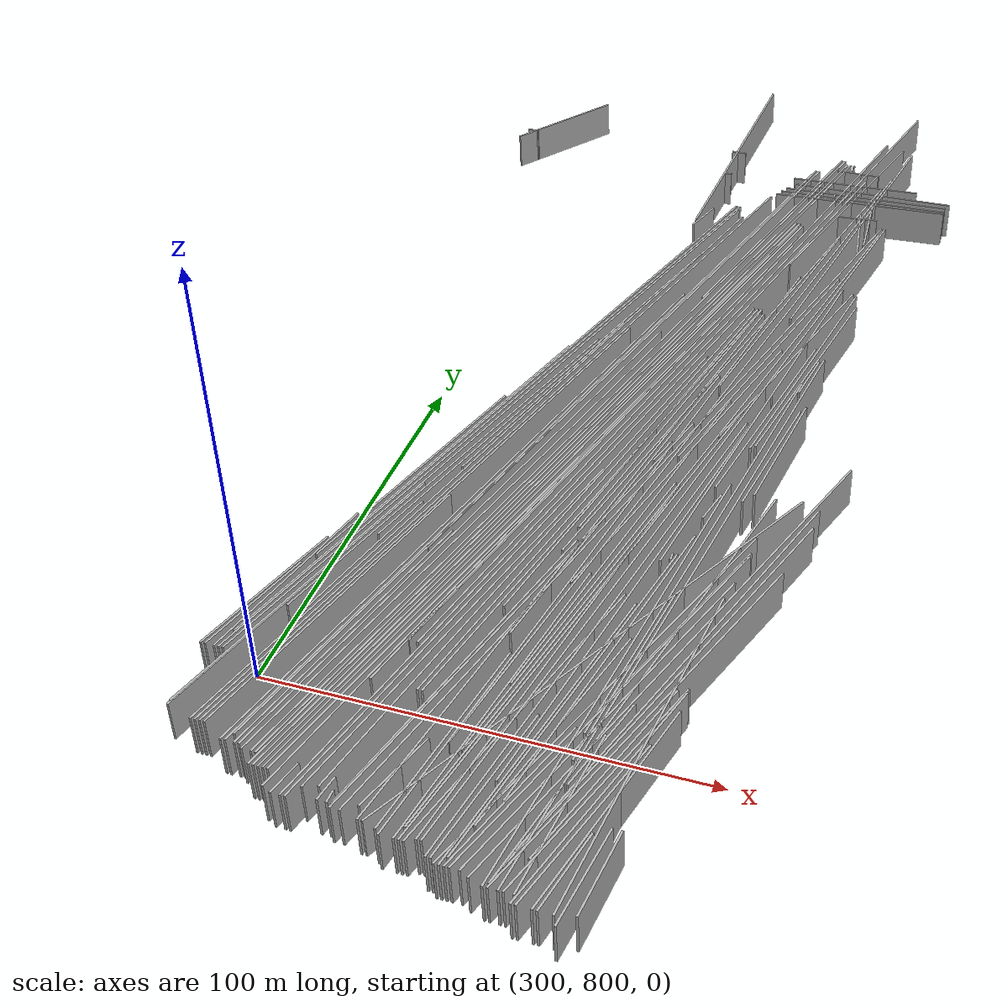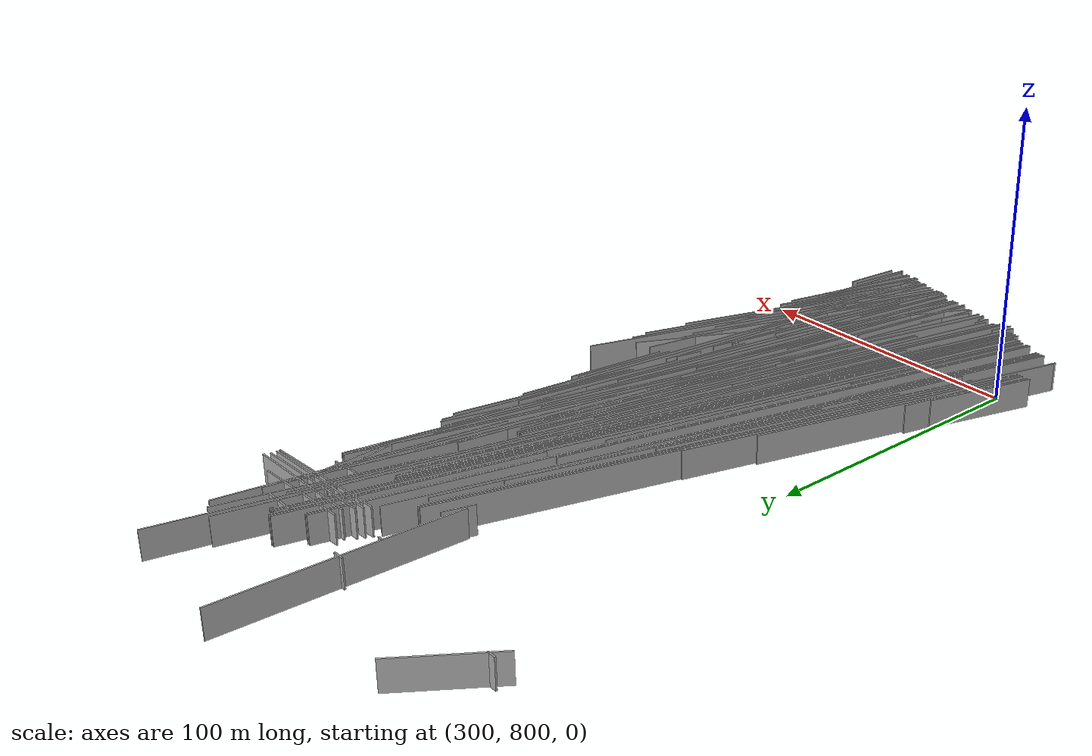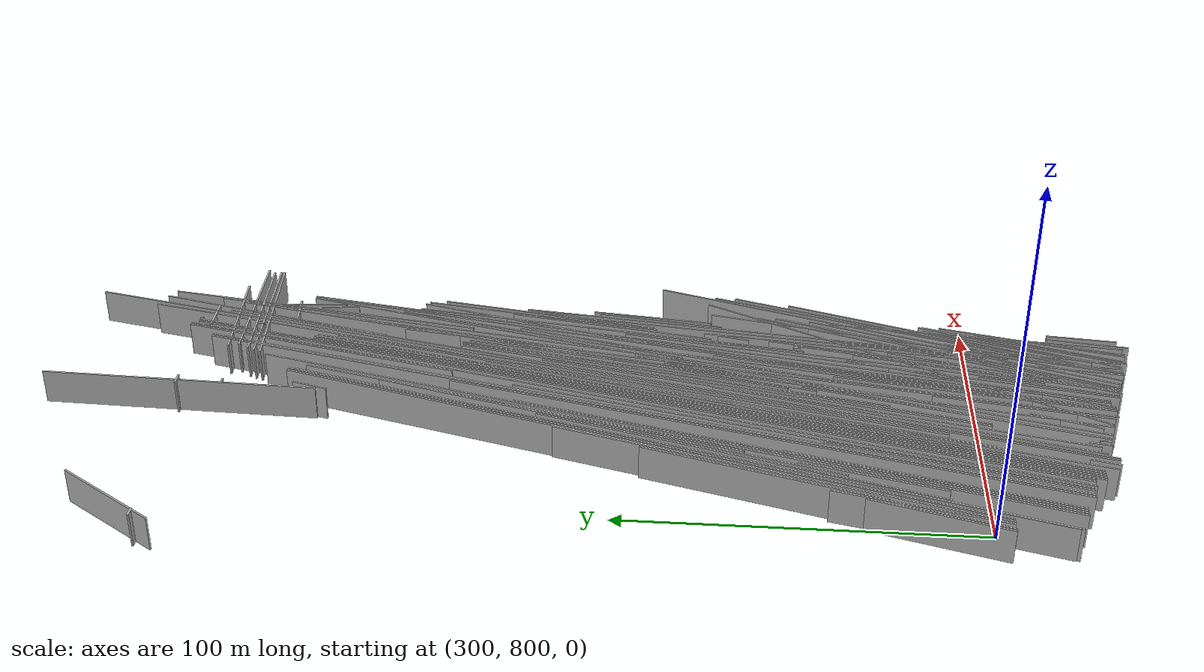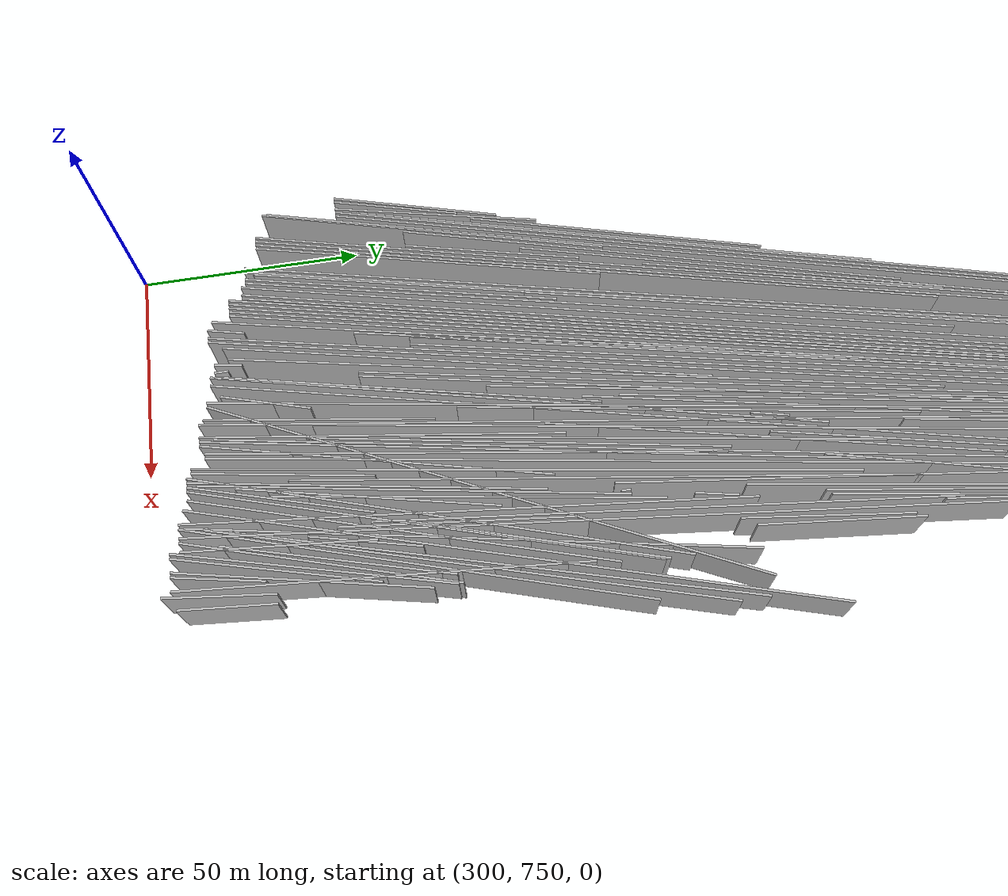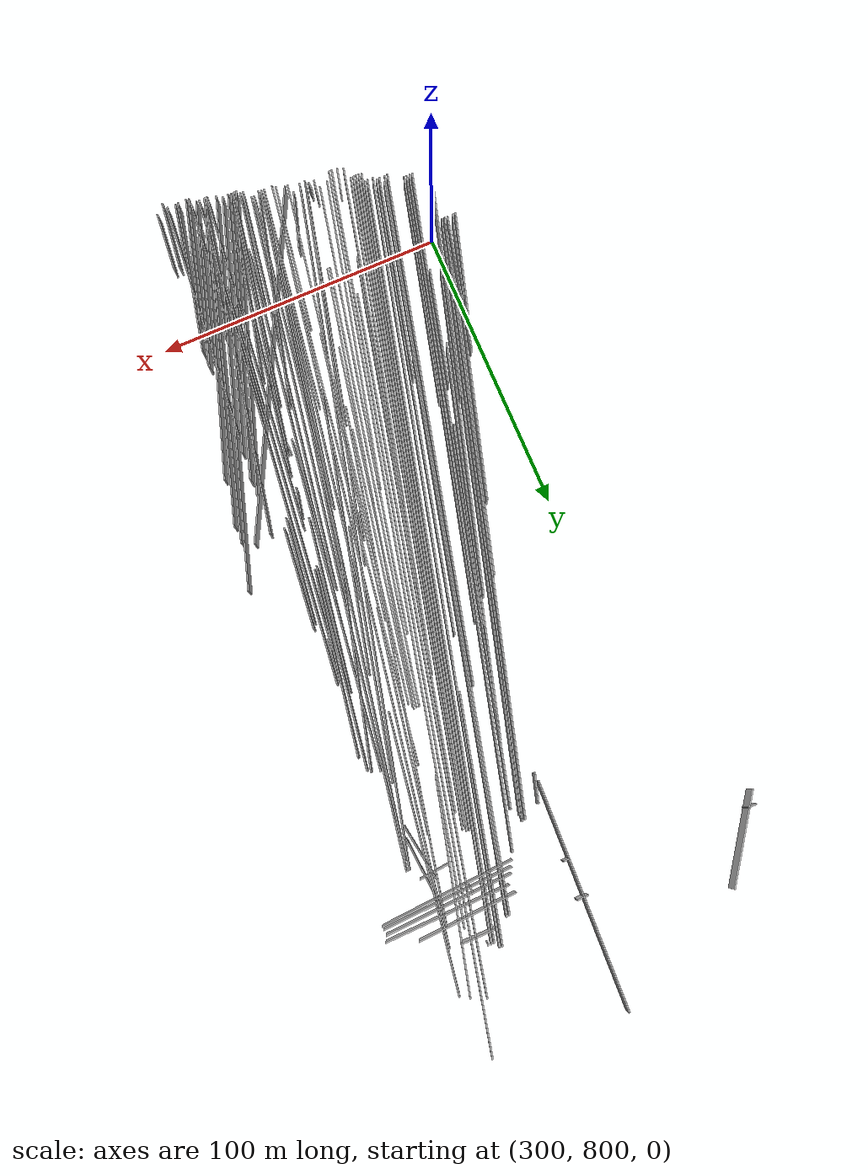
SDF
<sdf version="1.6">
 <model name="Worldsegments">
  <static>1</static>
  <link name="Wall_6">
   <pose>337.5 898.0 5.0 0 0 1.3277315</pose>
   <collision name="Wall_6_Collision"><geometry><box><size>253.4502 0.5 10.0</size></box></geometry></collision>
   <visual name="Wall_6_Visual"><geometry><box><size>253.4502 0.5 10.0</size></box></geometry></visual>
  </link>
  <link name="Wall_13">
   <pose>345.5 900.5 5.0 0 0 1.3267479</pose>
   <collision name="Wall_13_Collision">
    <geometry><box><size>260.72592 0.5 10.0</size></box></geometry>
   </collision>
   <visual name="Wall_13_Visual"><geometry><box><size>260.72592 0.5 10.0</size></box></geometry></visual>
  </link>
  <link name="Wall_14">
   <pose>357.0 913.0 5.0 0 0 1.3435007</pose>
   <collision name="Wall_14_Collision"><geometry><box><size>301.7615 0.5 10.0</size></box></geometry></collision>
   <visual name="Wall_14_Visual"><geometry><box><size>301.7615 0.5 10.0</size></box></geometry></visual>
  </link>
  <link name="Wall_17">
   <pose>382.5 805.0 5.0 0 0 1.2522407</pose>
   <collision name="Wall_17_Collision"><geometry><box><size>98.9798 0.5 10.0</size></box></geometry></collision>
   <visual name="Wall_17_Visual"><geometry><box><size>98.9798 0.5 10.0</size></box></geometry></visual>
  </link>
  <link name="Wall_20">
   <pose>342.5 881.0 5.0 0 0 1.3258177</pose>
   <collision name="Wall_20_Collision">
    <geometry><box><size>226.77081 0.5 10.0</size></box></geometry>
   </collision>
   <visual name="Wall_20_Visual"><geometry><box><size>226.77081 0.5 10.0</size></box></geometry></visual>
  </link>
  <link name="Wall_21">
   <pose>353.0 801.5 5.0 0 0 1.4161958</pose>
   <collision name="Wall_21_Collision"><geometry><box><size>77.92946 0.5 10.0</size></box></geometry></collision>
   <visual name="Wall_21_Visual"><geometry><box><size>77.92946 0.5 10.0</size></box></geometry></visual>
  </link>
  <link name="Wall_22">
   <pose>370.5 846.5 5.0 0 0 1.4118433</pose>
   <collision name="Wall_22_Collision">
    <geometry><box><size>132.67253 0.5 10.0</size></box></geometry>
   </collision>
   <visual name="Wall_22_Visual"><geometry><box><size>132.67253 0.5 10.0</size></box></geometry></visual>
  </link>
  <link name="Wall_23">
   <pose>373.0 817.5 5.0 0 0 1.4536875</pose>
   <collision name="Wall_23_Collision"><geometry><box><size>119.8207 0.5 10.0</size></box></geometry></collision>
   <visual name="Wall_23_Visual"><geometry><box><size>119.8207 0.5 10.0</size></box></geometry></visual>
  </link>
  <link name="Wall_25">
   <pose>372.5 879.5 5.0 0 0 1.3951365</pose>
   <collision name="Wall_25_Collision">
    <geometry><box><size>234.61032 0.5 10.0</size></box></geometry>
   </collision>
   <visual name="Wall_25_Visual"><geometry><box><size>234.61032 0.5 10.0</size></box></geometry></visual>
  </link>
  <link name="Wall_26">
   <pose>338.5 821.5 5.0 0 0 1.3370532</pose>
   <collision name="Wall_26_Collision">
    <geometry><box><size>107.935165 0.5 10.0</size></box></geometry>
   </collision>
   <visual name="Wall_26_Visual"><geometry><box><size>107.935165 0.5 10.0</size></box></geometry></visual>
  </link>
  <link name="Wall_27">
   <pose>363.5 880.5 5.0 0 0 1.3268454</pose>
   <collision name="Wall_27_Collision">
    <geometry><box><size>235.98729 0.5 10.0</size></box></geometry>
   </collision>
   <visual name="Wall_27_Visual"><geometry><box><size>235.98729 0.5 10.0</size></box></geometry></visual>
  </link>
  <link name="Wall_29">
   <pose>344.5 900.5 5.0 0 0 1.3267479</pose>
   <collision name="Wall_29_Collision">
    <geometry><box><size>260.72592 0.5 10.0</size></box></geometry>
   </collision>
   <visual name="Wall_29_Visual"><geometry><box><size>260.72592 0.5 10.0</size></box></geometry></visual>
  </link>
  <link name="Wall_30">
   <pose>329.0 890.5 5.0 0 0 1.3101939</pose>
   <collision name="Wall_30_Collision">
    <geometry><box><size>232.86263 0.5 10.0</size></box></geometry>
   </collision>
   <visual name="Wall_30_Visual"><geometry><box><size>232.86263 0.5 10.0</size></box></geometry></visual>
  </link>
  <link name="Wall_32">
   <pose>382.0 904.5 5.0 0 0 1.4029005</pose>
   <collision name="Wall_32_Collision">
    <geometry><box><size>59.841457 0.5 10.0</size></box></geometry>
   </collision>
   <visual name="Wall_32_Visual"><geometry><box><size>59.841457 0.5 10.0</size></box></geometry></visual>
  </link>
  <link name="Wall_33">
   <pose>346.0 929.0 5.0 0 0 1.3258177</pose>
   <collision name="Wall_33_Collision">
    <geometry><box><size>189.66286 0.5 10.0</size></box></geometry>
   </collision>
   <visual name="Wall_33_Visual"><geometry><box><size>189.66286 0.5 10.0</size></box></geometry></visual>
  </link>
  <link name="Wall_34">
   <pose>364.0 988.5 5.0 0 0 1.3287246</pose>
   <collision name="Wall_34_Collision"><geometry><box><size>83.43261 0.5 10.0</size></box></geometry></collision>
   <visual name="Wall_34_Visual"><geometry><box><size>83.43261 0.5 10.0</size></box></geometry></visual>
  </link>
  <link name="Wall_38">
   <pose>322.5 896.0 5.0 0 0 1.2904967</pose>
   <collision name="Wall_38_Collision">
    <geometry><box><size>206.04126 0.5 10.0</size></box></geometry>
   </collision>
   <visual name="Wall_38_Visual"><geometry><box><size>206.04126 0.5 10.0</size></box></geometry></visual>
  </link>
  <link name="Wall_40">
   <pose>369.5 930.5 5.0 0 0 1.357707</pose>
   <collision name="Wall_40_Collision">
    <geometry><box><size>174.95714 0.5 10.0</size></box></geometry>
   </collision>
   <visual name="Wall_40_Visual"><geometry><box><size>174.95714 0.5 10.0</size></box></geometry></visual>
  </link>
  <link name="Wall_42">
   <pose>387.5 923.5 5.0 0 0 1.3979357</pose>
   <collision name="Wall_42_Collision">
    <geometry><box><size>63.953106 0.5 10.0</size></box></geometry>
   </collision>
   <visual name="Wall_42_Visual"><geometry><box><size>63.953106 0.5 10.0</size></box></geometry></visual>
  </link>
  <link name="Wall_43">
   <pose>388.0 892.5 5.0 0 0 1.4570043</pose>
   <collision name="Wall_43_Collision"><geometry><box><size>35.22783 0.5 10.0</size></box></geometry></collision>
   <visual name="Wall_43_Visual"><geometry><box><size>35.22783 0.5 10.0</size></box></geometry></visual>
  </link>
  <link name="Wall_45">
   <pose>339.0 855.0 5.0 0 0 1.3258177</pose>
   <collision name="Wall_45_Collision">
    <geometry><box><size>173.17044 0.5 10.0</size></box></geometry>
   </collision>
   <visual name="Wall_45_Visual"><geometry><box><size>173.17044 0.5 10.0</size></box></geometry></visual>
  </link>
  <link name="Wall_47">
   <pose>330.5 770.0 5.0 0 0 1.4056476</pose>
   <collision name="Wall_47_Collision">
    <geometry><box><size>6.0827627 0.5 10.0</size></box></geometry>
   </collision>
   <visual name="Wall_47_Visual"><geometry><box><size>6.0827627 0.5 10.0</size></box></geometry></visual>
  </link>
  <link name="Wall_49">
   <pose>343.0 901.5 5.0 0 0 1.3248951</pose>
   <collision name="Wall_49_Collision">
    <geometry><box><size>262.90872 0.5 10.0</size></box></geometry>
   </collision>
   <visual name="Wall_49_Visual"><geometry><box><size>262.90872 0.5 10.0</size></box></geometry></visual>
  </link>
  <link name="Wall_51">
   <pose>353.5 892.5 5.0 0 0 1.3416893</pose>
   <collision name="Wall_51_Collision">
    <geometry><box><size>259.78836 0.5 10.0</size></box></geometry>
   </collision>
   <visual name="Wall_51_Visual"><geometry><box><size>259.78836 0.5 10.0</size></box></geometry></visual>
  </link>
  <link name="Wall_58">
   <pose>343.0 880.0 5.0 0 0 1.3279775</pose>
   <collision name="Wall_58_Collision">
    <geometry><box><size>224.58852 0.5 10.0</size></box></geometry>
   </collision>
   <visual name="Wall_58_Visual"><geometry><box><size>224.58852 0.5 10.0</size></box></geometry></visual>
  </link>
  <link name="Wall_59">
   <pose>386.5 890.0 5.0 0 0 1.4327903</pose>
   <collision name="Wall_59_Collision">
    <geometry><box><size>36.345562 0.5 10.0</size></box></geometry>
   </collision>
   <visual name="Wall_59_Visual"><geometry><box><size>36.345562 0.5 10.0</size></box></geometry></visual>
  </link>
  <link name="Wall_61">
   <pose>322.0 887.0 5.0 0 0 1.2949904</pose>
   <collision name="Wall_61_Collision">
    <geometry><box><size>220.32703 0.5 10.0</size></box></geometry>
   </collision>
   <visual name="Wall_61_Visual"><geometry><box><size>220.32703 0.5 10.0</size></box></geometry></visual>
  </link>
  <link name="Wall_66">
   <pose>327.5 861.5 5.0 0 0 1.3271782</pose>
   <collision name="Wall_66_Collision">
    <geometry><box><size>178.26385 0.5 10.0</size></box></geometry>
   </collision>
   <visual name="Wall_66_Visual"><geometry><box><size>178.26385 0.5 10.0</size></box></geometry></visual>
  </link>
  <link name="Wall_67">
   <pose>384.0 798.5 5.0 0 0 1.476955</pose>
   <collision name="Wall_67_Collision"><geometry><box><size>85.37564 0.5 10.0</size></box></geometry></collision>
   <visual name="Wall_67_Visual"><geometry><box><size>85.37564 0.5 10.0</size></box></geometry></visual>
  </link>
  <link name="Wall_70">
   <pose>357.0 886.0 5.0 0 0 1.3765553</pose>
   <collision name="Wall_70_Collision">
    <geometry><box><size>124.33825 0.5 10.0</size></box></geometry>
   </collision>
   <visual name="Wall_70_Visual"><geometry><box><size>124.33825 0.5 10.0</size></box></geometry></visual>
  </link>
  <link name="Wall_76">
   <pose>379.0 817.0 5.0 0 0 1.3667784</pose>
   <collision name="Wall_76_Collision">
    <geometry><box><size>118.45674 0.5 10.0</size></box></geometry>
   </collision>
   <visual name="Wall_76_Visual"><geometry><box><size>118.45674 0.5 10.0</size></box></geometry></visual>
  </link>
  <link name="Wall_80">
   <pose>385.5 991.5 5.0 0 0 1.4108832</pose>
   <collision name="Wall_80_Collision"><geometry><box><size>94.20191 0.5 10.0</size></box></geometry></collision>
   <visual name="Wall_80_Visual"><geometry><box><size>94.20191 0.5 10.0</size></box></geometry></visual>
  </link>
  <link name="Wall_81">
   <pose>352.5 872.5 5.0 0 0 1.365669</pose>
   <collision name="Wall_81_Collision">
    <geometry><box><size>152.19067 0.5 10.0</size></box></geometry>
   </collision>
   <visual name="Wall_81_Visual"><geometry><box><size>152.19067 0.5 10.0</size></box></geometry></visual>
  </link>
  <link name="Wall_88">
   <pose>370.0 817.5 5.0 0 0 1.3996477</pose>
   <collision name="Wall_88_Collision"><geometry><box><size>82.20097 0.5 10.0</size></box></geometry></collision>
   <visual name="Wall_88_Visual"><geometry><box><size>82.20097 0.5 10.0</size></box></geometry></visual>
  </link>
  <link name="Wall_90">
   <pose>369.0 905.0 5.0 0 0 1.3946742</pose>
   <collision name="Wall_90_Collision">
    <geometry><box><size>239.70816 0.5 10.0</size></box></geometry>
   </collision>
   <visual name="Wall_90_Visual"><geometry><box><size>239.70816 0.5 10.0</size></box></geometry></visual>
  </link>
  <link name="Wall_91">
   <pose>298.5 820.0 5.0 0 0 1.3360738</pose>
   <collision name="Wall_91_Collision">
    <geometry><box><size>47.296936 0.5 10.0</size></box></geometry>
   </collision>
   <visual name="Wall_91_Visual"><geometry><box><size>47.296936 0.5 10.0</size></box></geometry></visual>
  </link>
  <link name="Wall_94">
   <pose>380.0 784.5 5.0 0 0 1.297137</pose>
   <collision name="Wall_94_Collision"><geometry><box><size>59.20304 0.5 10.0</size></box></geometry></collision>
   <visual name="Wall_94_Visual"><geometry><box><size>59.20304 0.5 10.0</size></box></geometry></visual>
  </link>
  <link name="Wall_95">
   <pose>350.5 897.0 5.0 0 0 1.3393854</pose>
   <collision name="Wall_95_Collision">
    <geometry><box><size>178.76521 0.5 10.0</size></box></geometry>
   </collision>
   <visual name="Wall_95_Visual"><geometry><box><size>178.76521 0.5 10.0</size></box></geometry></visual>
  </link>
  <link name="Wall_103">
   <pose>364.0 797.0 5.0 0 0 1.3838171</pose>
   <collision name="Wall_103_Collision">
    <geometry><box><size>75.31268 0.5 10.0</size></box></geometry>
   </collision>
   <visual name="Wall_103_Visual"><geometry><box><size>75.31268 0.5 10.0</size></box></geometry></visual>
  </link>
  <link name="Wall_114">
   <pose>320.0 853.5 5.0 0 0 1.3118434</pose>
   <collision name="Wall_114_Collision">
    <geometry><box><size>156.20819 0.5 10.0</size></box></geometry>
   </collision>
   <visual name="Wall_114_Visual"><geometry><box><size>156.20819 0.5 10.0</size></box></geometry></visual>
  </link>
  <link name="Wall_116">
   <pose>380.0 1023.0 5.0 0 0 0.0</pose>
   <collision name="Wall_116_Collision"><geometry><box><size>12.0 0.5 10.0</size></box></geometry></collision>
   <visual name="Wall_116_Visual"><geometry><box><size>12.0 0.5 10.0</size></box></geometry></visual>
  </link>
  <link name="Wall_117">
   <pose>384.5 815.5 5.0 0 0 1.2662854</pose>
   <collision name="Wall_117_Collision">
    <geometry><box><size>110.06362 0.5 10.0</size></box></geometry>
   </collision>
   <visual name="Wall_117_Visual"><geometry><box><size>110.06362 0.5 10.0</size></box></geometry></visual>
  </link>
  <link name="Wall_120">
   <pose>318.0 867.0 5.0 0 0 1.2877005</pose>
   <collision name="Wall_120_Collision">
    <geometry><box><size>114.56003 0.5 10.0</size></box></geometry>
   </collision>
   <visual name="Wall_120_Visual"><geometry><box><size>114.56003 0.5 10.0</size></box></geometry></visual>
  </link>
  <link name="Wall_126">
   <pose>370.0 879.0 5.0 0 0 1.3785114</pose>
   <collision name="Wall_126_Collision">
    <geometry><box><size>230.24335 0.5 10.0</size></box></geometry>
   </collision>
   <visual name="Wall_126_Visual"><geometry><box><size>230.24335 0.5 10.0</size></box></geometry></visual>
  </link>
  <link name="Wall_128">
   <pose>366.5 806.5 5.0 0 0 1.3820585</pose>
   <collision name="Wall_128_Collision">
    <geometry><box><size>90.60905 0.5 10.0</size></box></geometry>
   </collision>
   <visual name="Wall_128_Visual"><geometry><box><size>90.60905 0.5 10.0</size></box></geometry></visual>
  </link>
  <link name="Wall_129">
   <pose>344.0 1025.0 5.0 0 0 0.0</pose>
   <collision name="Wall_129_Collision"><geometry><box><size>4.0 0.5 10.0</size></box></geometry></collision>
   <visual name="Wall_129_Visual"><geometry><box><size>4.0 0.5 10.0</size></box></geometry></visual>
  </link>
  <link name="Wall_130">
   <pose>326.0 884.0 5.0 0 0 1.3125441</pose>
   <collision name="Wall_130_Collision">
    <geometry><box><size>219.27151 0.5 10.0</size></box></geometry>
   </collision>
   <visual name="Wall_130_Visual"><geometry><box><size>219.27151 0.5 10.0</size></box></geometry></visual>
  </link>
  <link name="Wall_131">
   <pose>341.5 881.0 5.0 0 0 1.3258177</pose>
   <collision name="Wall_131_Collision">
    <geometry><box><size>226.77081 0.5 10.0</size></box></geometry>
   </collision>
   <visual name="Wall_131_Visual"><geometry><box><size>226.77081 0.5 10.0</size></box></geometry></visual>
  </link>
  <link name="Wall_145">
   <pose>375.0 803.0 5.0 0 0 1.2560387</pose>
   <collision name="Wall_145_Collision">
    <geometry><box><size>90.44335 0.5 10.0</size></box></geometry>
   </collision>
   <visual name="Wall_145_Visual"><geometry><box><size>90.44335 0.5 10.0</size></box></geometry></visual>
  </link>
  <link name="Wall_148">
   <pose>329.0 852.5 5.0 0 0 1.3303769</pose>
   <collision name="Wall_148_Collision">
    <geometry><box><size>159.5901 0.5 10.0</size></box></geometry>
   </collision>
   <visual name="Wall_148_Visual"><geometry><box><size>159.5901 0.5 10.0</size></box></geometry></visual>
  </link>
  <link name="Wall_149">
   <pose>311.0 831.5 5.0 0 0 1.3197936</pose>
   <collision name="Wall_149_Collision">
    <geometry><box><size>40.261642 0.5 10.0</size></box></geometry>
   </collision>
   <visual name="Wall_149_Visual"><geometry><box><size>40.261642 0.5 10.0</size></box></geometry></visual>
  </link>
  <link name="Wall_151">
   <pose>384.0 824.5 5.0 0 0 1.2605395</pose>
   <collision name="Wall_151_Collision">
    <geometry><box><size>137.56816 0.5 10.0</size></box></geometry>
   </collision>
   <visual name="Wall_151_Visual"><geometry><box><size>137.56816 0.5 10.0</size></box></geometry></visual>
  </link>
  <link name="Wall_161">
   <pose>349.5 831.0 5.0 0 0 1.322201</pose>
   <collision name="Wall_161_Collision">
    <geometry><box><size>134.12308 0.5 10.0</size></box></geometry>
   </collision>
   <visual name="Wall_161_Visual"><geometry><box><size>134.12308 0.5 10.0</size></box></geometry></visual>
  </link>
  <link name="Wall_167">
   <pose>366.0 830.5 5.0 0 0 1.3998202</pose>
   <collision name="Wall_167_Collision">
    <geometry><box><size>141.05673 0.5 10.0</size></box></geometry>
   </collision>
   <visual name="Wall_167_Visual"><geometry><box><size>141.05673 0.5 10.0</size></box></geometry></visual>
  </link>
  <link name="Wall_169">
   <pose>322.0 770.0 5.0 0 0 1.3258177</pose>
   <collision name="Wall_169_Collision">
    <geometry><box><size>8.246211 0.5 10.0</size></box></geometry>
   </collision>
   <visual name="Wall_169_Visual"><geometry><box><size>8.246211 0.5 10.0</size></box></geometry></visual>
  </link>
  <link name="Wall_171">
   <pose>374.5 807.5 5.0 0 0 1.2553748</pose>
   <collision name="Wall_171_Collision">
    <geometry><box><size>99.92998 0.5 10.0</size></box></geometry>
   </collision>
   <visual name="Wall_171_Visual"><geometry><box><size>99.92998 0.5 10.0</size></box></geometry></visual>
  </link>
  <link name="Wall_177">
   <pose>386.0 1012.5 5.0 0 0 0.02272336</pose>
   <collision name="Wall_177_Collision">
    <geometry><box><size>44.011364 0.5 10.0</size></box></geometry>
   </collision>
   <visual name="Wall_177_Visual"><geometry><box><size>44.011364 0.5 10.0</size></box></geometry></visual>
  </link>
  <link name="Wall_188">
   <pose>323.5 896.0 5.0 0 0 1.2904967</pose>
   <collision name="Wall_188_Collision">
    <geometry><box><size>206.04126 0.5 10.0</size></box></geometry>
   </collision>
   <visual name="Wall_188_Visual"><geometry><box><size>206.04126 0.5 10.0</size></box></geometry></visual>
  </link>
  <link name="Wall_190">
   <pose>375.0 949.5 5.0 0 0 1.3862535</pose>
   <collision name="Wall_190_Collision">
    <geometry><box><size>76.29548 0.5 10.0</size></box></geometry>
   </collision>
   <visual name="Wall_190_Visual"><geometry><box><size>76.29548 0.5 10.0</size></box></geometry></visual>
  </link>
  <link name="Wall_191">
   <pose>375.0 814.5 5.0 0 0 1.4489539</pose>
   <collision name="Wall_191_Collision">
    <geometry><box><size>49.365982 0.5 10.0</size></box></geometry>
   </collision>
   <visual name="Wall_191_Visual"><geometry><box><size>49.365982 0.5 10.0</size></box></geometry></visual>
  </link>
  <link name="Wall_198">
   <pose>358.5 926.0 5.0 0 0 1.3462023</pose>
   <collision name="Wall_198_Collision">
    <geometry><box><size>237.97688 0.5 10.0</size></box></geometry>
   </collision>
   <visual name="Wall_198_Visual"><geometry><box><size>237.97688 0.5 10.0</size></box></geometry></visual>
  </link>
  <link name="Wall_204">
   <pose>295.5 815.5 5.0 0 0 1.2818209</pose>
   <collision name="Wall_204_Collision">
    <geometry><box><size>38.600517 0.5 10.0</size></box></geometry>
   </collision>
   <visual name="Wall_204_Visual"><geometry><box><size>38.600517 0.5 10.0</size></box></geometry></visual>
  </link>
  <link name="Wall_211">
   <pose>374.0 778.0 5.0 0 0 1.4711276</pose>
   <collision name="Wall_211_Collision"><geometry><box><size>40.1995 0.5 10.0</size></box></geometry></collision>
   <visual name="Wall_211_Visual"><geometry><box><size>40.1995 0.5 10.0</size></box></geometry></visual>
  </link>
  <link name="Wall_224">
   <pose>360.0 818.5 5.0 0 0 1.4071357</pose>
   <collision name="Wall_224_Collision">
    <geometry><box><size>110.47624 0.5 10.0</size></box></geometry>
   </collision>
   <visual name="Wall_224_Visual"><geometry><box><size>110.47624 0.5 10.0</size></box></geometry></visual>
  </link>
  <link name="Wall_231">
   <pose>373.0 810.5 5.0 0 0 1.2460784</pose>
   <collision name="Wall_231_Collision">
    <geometry><box><size>106.56923 0.5 10.0</size></box></geometry>
   </collision>
   <visual name="Wall_231_Visual"><geometry><box><size>106.56923 0.5 10.0</size></box></geometry></visual>
  </link>
  <link name="Wall_237">
   <pose>311.5 859.5 5.0 0 0 1.2913486</pose>
   <collision name="Wall_237_Collision">
    <geometry><box><size>119.64113 0.5 10.0</size></box></geometry>
   </collision>
   <visual name="Wall_237_Visual"><geometry><box><size>119.64113 0.5 10.0</size></box></geometry></visual>
  </link>
  <link name="Wall_246">
   <pose>379.5 858.0 5.0 0 0 1.4484595</pose>
   <collision name="Wall_246_Collision">
    <geometry><box><size>122.91867 0.5 10.0</size></box></geometry>
   </collision>
   <visual name="Wall_246_Visual"><geometry><box><size>122.91867 0.5 10.0</size></box></geometry></visual>
  </link>
  <link name="Wall_249">
   <pose>361.0 899.5 5.0 0 0 1.3796118</pose>
   <collision name="Wall_249_Collision">
    <geometry><box><size>94.72592 0.5 10.0</size></box></geometry>
   </collision>
   <visual name="Wall_249_Visual"><geometry><box><size>94.72592 0.5 10.0</size></box></geometry></visual>
  </link>
  <link name="Wall_258">
   <pose>382.0 782.0 5.0 0 0 1.3439975</pose>
   <collision name="Wall_258_Collision">
    <geometry><box><size>53.366657 0.5 10.0</size></box></geometry>
   </collision>
   <visual name="Wall_258_Visual"><geometry><box><size>53.366657 0.5 10.0</size></box></geometry></visual>
  </link>
  <link name="Wall_262">
   <pose>359.5 830.0 5.0 0 0 1.3799652</pose>
   <collision name="Wall_262_Collision">
    <geometry><box><size>89.62701 0.5 10.0</size></box></geometry>
   </collision>
   <visual name="Wall_262_Visual"><geometry><box><size>89.62701 0.5 10.0</size></box></geometry></visual>
  </link>
  <link name="Wall_270">
   <pose>380.5 1016.0 5.0 0 0 0.057080783</pose>
   <collision name="Wall_270_Collision">
    <geometry><box><size>35.057095 0.5 10.0</size></box></geometry>
   </collision>
   <visual name="Wall_270_Visual"><geometry><box><size>35.057095 0.5 10.0</size></box></geometry></visual>
  </link>
  <link name="Wall_282">
   <pose>360.0 864.0 5.0 0 0 1.413686</pose>
   <collision name="Wall_282_Collision">
    <geometry><box><size>204.51895 0.5 10.0</size></box></geometry>
   </collision>
   <visual name="Wall_282_Visual"><geometry><box><size>204.51895 0.5 10.0</size></box></geometry></visual>
  </link>
  <link name="Wall_287">
   <pose>345.5 846.5 5.0 0 0 1.3583643</pose>
   <collision name="Wall_287_Collision">
    <geometry><box><size>156.51837 0.5 10.0</size></box></geometry>
   </collision>
   <visual name="Wall_287_Visual"><geometry><box><size>156.51837 0.5 10.0</size></box></geometry></visual>
  </link>
  <link name="Wall_292">
   <pose>385.0 820.5 5.0 0 0 1.2801971</pose>
   <collision name="Wall_292_Collision">
    <geometry><box><size>111.68259 0.5 10.0</size></box></geometry>
   </collision>
   <visual name="Wall_292_Visual"><geometry><box><size>111.68259 0.5 10.0</size></box></geometry></visual>
  </link>
  <link name="Wall_310">
   <pose>376.0 1008.5 5.0 0 0 1.5707964</pose>
   <collision name="Wall_310_Collision"><geometry><box><size>3.0 0.5 10.0</size></box></geometry></collision>
   <visual name="Wall_310_Visual"><geometry><box><size>3.0 0.5 10.0</size></box></geometry></visual>
  </link>
  <link name="Wall_314">
   <pose>376.0 925.0 5.0 0 0 1.3370532</pose>
   <collision name="Wall_314_Collision">
    <geometry><box><size>86.34813 0.5 10.0</size></box></geometry>
   </collision>
   <visual name="Wall_314_Visual"><geometry><box><size>86.34813 0.5 10.0</size></box></geometry></visual>
  </link>
  <link name="Wall_316">
   <pose>344.0 880.5 5.0 0 0 1.3290435</pose>
   <collision name="Wall_316_Collision">
    <geometry><box><size>225.55931 0.5 10.0</size></box></geometry>
   </collision>
   <visual name="Wall_316_Visual"><geometry><box><size>225.55931 0.5 10.0</size></box></geometry></visual>
  </link>
  <link name="Wall_320">
   <pose>329.5 903.0 5.0 0 0 1.293513</pose>
   <collision name="Wall_320_Collision">
    <geometry><box><size>135.16287 0.5 10.0</size></box></geometry>
   </collision>
   <visual name="Wall_320_Visual"><geometry><box><size>135.16287 0.5 10.0</size></box></geometry></visual>
  </link>
  <link name="Wall_323">
   <pose>379.5 844.0 5.0 0 0 1.4493046</pose>
   <collision name="Wall_323_Collision">
    <geometry><box><size>173.27724 0.5 10.0</size></box></geometry>
   </collision>
   <visual name="Wall_323_Visual"><geometry><box><size>173.27724 0.5 10.0</size></box></geometry></visual>
  </link>
  <link name="Wall_346">
   <pose>382.0 927.0 5.0 0 0 1.3120254</pose>
   <collision name="Wall_346_Collision">
    <geometry><box><size>70.34202 0.5 10.0</size></box></geometry>
   </collision>
   <visual name="Wall_346_Visual"><geometry><box><size>70.34202 0.5 10.0</size></box></geometry></visual>
  </link>
  <link name="Wall_354">
   <pose>379.0 786.0 5.0 0 0 1.259798</pose>
   <collision name="Wall_354_Collision">
    <geometry><box><size>58.821766 0.5 10.0</size></box></geometry>
   </collision>
   <visual name="Wall_354_Visual"><geometry><box><size>58.821766 0.5 10.0</size></box></geometry></visual>
  </link>
  <link name="Wall_362">
   <pose>386.5 925.5 5.0 0 0 1.4127064</pose>
   <collision name="Wall_362_Collision">
    <geometry><box><size>69.87131 0.5 10.0</size></box></geometry>
   </collision>
   <visual name="Wall_362_Visual"><geometry><box><size>69.87131 0.5 10.0</size></box></geometry></visual>
  </link>
  <link name="Wall_372">
   <pose>310.5 860.5 5.0 0 0 1.2864115</pose>
   <collision name="Wall_372_Collision">
    <geometry><box><size>67.72001 0.5 10.0</size></box></geometry>
   </collision>
   <visual name="Wall_372_Visual"><geometry><box><size>67.72001 0.5 10.0</size></box></geometry></visual>
  </link>
  <link name="Wall_374">
   <pose>358.0 867.0 5.0 0 0 1.3891475</pose>
   <collision name="Wall_374_Collision">
    <geometry><box><size>99.63935 0.5 10.0</size></box></geometry>
   </collision>
   <visual name="Wall_374_Visual"><geometry><box><size>99.63935 0.5 10.0</size></box></geometry></visual>
  </link>
  <link name="Wall_376">
   <pose>332.0 768.5 5.0 0 0 1.5707964</pose>
   <collision name="Wall_376_Collision"><geometry><box><size>3.0 0.5 10.0</size></box></geometry></collision>
   <visual name="Wall_376_Visual"><geometry><box><size>3.0 0.5 10.0</size></box></geometry></visual>
  </link>
  <link name="Wall_387">
   <pose>364.0 779.0 5.0 0 0 1.2649175</pose>
   <collision name="Wall_387_Collision">
    <geometry><box><size>39.849716 0.5 10.0</size></box></geometry>
   </collision>
   <visual name="Wall_387_Visual"><geometry><box><size>39.849716 0.5 10.0</size></box></geometry></visual>
  </link>
  <link name="Wall_389">
   <pose>382.5 765.5 5.0 0 0 1.4410938</pose>
   <collision name="Wall_389_Collision">
    <geometry><box><size>23.194826 0.5 10.0</size></box></geometry>
   </collision>
   <visual name="Wall_389_Visual"><geometry><box><size>23.194826 0.5 10.0</size></box></geometry></visual>
  </link>
  <link name="Wall_397">
   <pose>358.5 799.5 5.0 0 0 1.3161716</pose>
   <collision name="Wall_397_Collision">
    <geometry><box><size>75.43209 0.5 10.0</size></box></geometry>
   </collision>
   <visual name="Wall_397_Visual"><geometry><box><size>75.43209 0.5 10.0</size></box></geometry></visual>
  </link>
  <link name="Wall_398">
   <pose>281.5 1020.0 5.0 0 0 0.0</pose>
   <collision name="Wall_398_Collision"><geometry><box><size>3.0 0.5 10.0</size></box></geometry></collision>
   <visual name="Wall_398_Visual"><geometry><box><size>3.0 0.5 10.0</size></box></geometry></visual>
  </link>
  <link name="Wall_410">
   <pose>317.5 809.5 5.0 0 0 1.3292307</pose>
   <collision name="Wall_410_Collision">
    <geometry><box><size>71.063354 0.5 10.0</size></box></geometry>
   </collision>
   <visual name="Wall_410_Visual"><geometry><box><size>71.063354 0.5 10.0</size></box></geometry></visual>
  </link>
  <link name="Wall_423">
   <pose>354.0 872.5 5.0 0 0 1.3592447</pose>
   <collision name="Wall_423_Collision">
    <geometry><box><size>152.3975 0.5 10.0</size></box></geometry>
   </collision>
   <visual name="Wall_423_Visual"><geometry><box><size>152.3975 0.5 10.0</size></box></geometry></visual>
  </link>
  <link name="Wall_432">
   <pose>388.0 922.0 5.0 0 0 1.4288993</pose>
   <collision name="Wall_432_Collision">
    <geometry><box><size>14.142136 0.5 10.0</size></box></geometry>
   </collision>
   <visual name="Wall_432_Visual"><geometry><box><size>14.142136 0.5 10.0</size></box></geometry></visual>
  </link>
  <link name="Wall_440">
   <pose>368.5 820.5 5.0 0 0 1.0963964</pose>
   <collision name="Wall_440_Collision">
    <geometry><box><size>124.77981 0.5 10.0</size></box></geometry>
   </collision>
   <visual name="Wall_440_Visual"><geometry><box><size>124.77981 0.5 10.0</size></box></geometry></visual>
  </link>
  <link name="Wall_445">
   <pose>367.5 883.5 5.0 0 0 1.3332617</pose>
   <collision name="Wall_445_Collision">
    <geometry><box><size>97.74457 0.5 10.0</size></box></geometry>
   </collision>
   <visual name="Wall_445_Visual"><geometry><box><size>97.74457 0.5 10.0</size></box></geometry></visual>
  </link>
  <link name="Wall_446">
   <pose>384.0 1008.0 5.0 0 0 0.043450896</pose>
   <collision name="Wall_446_Collision">
    <geometry><box><size>46.043457 0.5 10.0</size></box></geometry>
   </collision>
   <visual name="Wall_446_Visual"><geometry><box><size>46.043457 0.5 10.0</size></box></geometry></visual>
  </link>
  <link name="Wall_457">
   <pose>384.5 998.5 5.0 0 0 0.09065989</pose>
   <collision name="Wall_457_Collision">
    <geometry><box><size>11.045361 0.5 10.0</size></box></geometry>
   </collision>
   <visual name="Wall_457_Visual"><geometry><box><size>11.045361 0.5 10.0</size></box></geometry></visual>
  </link>
  <link name="Wall_459">
   <pose>358.5 780.0 5.0 0 0 1.388628</pose>
   <collision name="Wall_459_Collision">
    <geometry><box><size>38.63936 0.5 10.0</size></box></geometry>
   </collision>
   <visual name="Wall_459_Visual"><geometry><box><size>38.63936 0.5 10.0</size></box></geometry></visual>
  </link>
  <link name="Wall_461">
   <pose>385.0 767.0 5.0 0 0 1.4711276</pose>
   <collision name="Wall_461_Collision">
    <geometry><box><size>20.09975 0.5 10.0</size></box></geometry>
   </collision>
   <visual name="Wall_461_Visual"><geometry><box><size>20.09975 0.5 10.0</size></box></geometry></visual>
  </link>
  <link name="Wall_463">
   <pose>383.5 1006.5 5.0 0 0 0.063743316</pose>
   <collision name="Wall_463_Collision">
    <geometry><box><size>47.095646 0.5 10.0</size></box></geometry>
   </collision>
   <visual name="Wall_463_Visual"><geometry><box><size>47.095646 0.5 10.0</size></box></geometry></visual>
  </link>
  <link name="Wall_467">
   <pose>355.0 855.0 5.0 0 0 1.3948567</pose>
   <collision name="Wall_467_Collision">
    <geometry><box><size>182.82231 0.5 10.0</size></box></geometry>
   </collision>
   <visual name="Wall_467_Visual"><geometry><box><size>182.82231 0.5 10.0</size></box></geometry></visual>
  </link>
  <link name="Wall_484">
   <pose>379.0 777.0 5.0 0 0 1.2924967</pose>
   <collision name="Wall_484_Collision">
    <geometry><box><size>43.68066 0.5 10.0</size></box></geometry>
   </collision>
   <visual name="Wall_484_Visual"><geometry><box><size>43.68066 0.5 10.0</size></box></geometry></visual>
  </link>
  <link name="Wall_485">
   <pose>388.0 998.0 5.0 0 0 -1.4940244</pose>
   <collision name="Wall_485_Collision">
    <geometry><box><size>26.076809 0.5 10.0</size></box></geometry>
   </collision>
   <visual name="Wall_485_Visual"><geometry><box><size>26.076809 0.5 10.0</size></box></geometry></visual>
  </link>
  <link name="Wall_486">
   <pose>311.0 816.5 5.0 0 0 1.3166716</pose>
   <collision name="Wall_486_Collision">
    <geometry><box><size>79.555016 0.5 10.0</size></box></geometry>
   </collision>
   <visual name="Wall_486_Visual"><geometry><box><size>79.555016 0.5 10.0</size></box></geometry></visual>
  </link>
  <link name="Wall_492">
   <pose>288.5 1028.5 5.0 0 0 0.957589</pose>
   <collision name="Wall_492_Collision">
    <geometry><box><size>33.01515 0.5 10.0</size></box></geometry>
   </collision>
   <visual name="Wall_492_Visual"><geometry><box><size>33.01515 0.5 10.0</size></box></geometry></visual>
  </link>
  <link name="Wall_503">
   <pose>362.0 833.5 5.0 0 0 1.374765</pose>
   <collision name="Wall_503_Collision">
    <geometry><box><size>143.75327 0.5 10.0</size></box></geometry>
   </collision>
   <visual name="Wall_503_Visual"><geometry><box><size>143.75327 0.5 10.0</size></box></geometry></visual>
  </link>
  <link name="Wall_511">
   <pose>343.5 987.0 5.0 0 0 1.2793396</pose>
   <collision name="Wall_511_Collision">
    <geometry><box><size>10.440307 0.5 10.0</size></box></geometry>
   </collision>
   <visual name="Wall_511_Visual"><geometry><box><size>10.440307 0.5 10.0</size></box></geometry></visual>
  </link>
  <link name="Wall_521">
   <pose>380.0 905.0 5.0 0 0 1.4313563</pose>
   <collision name="Wall_521_Collision">
    <geometry><box><size>115.11733 0.5 10.0</size></box></geometry>
   </collision>
   <visual name="Wall_521_Visual"><geometry><box><size>115.11733 0.5 10.0</size></box></geometry></visual>
  </link>
  <link name="Wall_527">
   <pose>329.0 898.0 5.0 0 0 1.3045443</pose>
   <collision name="Wall_527_Collision">
    <geometry><box><size>68.41052 0.5 10.0</size></box></geometry>
   </collision>
   <visual name="Wall_527_Visual"><geometry><box><size>68.41052 0.5 10.0</size></box></geometry></visual>
  </link>
  <link name="Wall_530">
   <pose>344.0 1012.0 5.0 0 0 0.0</pose>
   <collision name="Wall_530_Collision"><geometry><box><size>2.0 0.5 10.0</size></box></geometry></collision>
   <visual name="Wall_530_Visual"><geometry><box><size>2.0 0.5 10.0</size></box></geometry></visual>
  </link>
  <link name="Wall_557">
   <pose>347.0 788.5 5.0 0 0 1.4089589</pose>
   <collision name="Wall_557_Collision">
    <geometry><box><size>49.648766 0.5 10.0</size></box></geometry>
   </collision>
   <visual name="Wall_557_Visual"><geometry><box><size>49.648766 0.5 10.0</size></box></geometry></visual>
  </link>
  <link name="Wall_559">
   <pose>379.0 765.5 5.0 0 0 1.3633001</pose>
   <collision name="Wall_559_Collision">
    <geometry><box><size>19.416489 0.5 10.0</size></box></geometry>
   </collision>
   <visual name="Wall_559_Visual"><geometry><box><size>19.416489 0.5 10.0</size></box></geometry></visual>
  </link>
  <link name="Wall_568">
   <pose>374.0 850.0 5.0 0 0 1.5707964</pose>
   <collision name="Wall_568_Collision"><geometry><box><size>2.0 0.5 10.0</size></box></geometry></collision>
   <visual name="Wall_568_Visual"><geometry><box><size>2.0 0.5 10.0</size></box></geometry></visual>
  </link>
  <link name="Wall_571">
   <pose>343.5 1024.5 5.0 0 0 1.5328399</pose>
   <collision name="Wall_571_Collision">
    <geometry><box><size>79.05694 0.5 10.0</size></box></geometry>
   </collision>
   <visual name="Wall_571_Visual"><geometry><box><size>79.05694 0.5 10.0</size></box></geometry></visual>
  </link>
  <link name="Wall_578">
   <pose>366.5 797.0 5.0 0 0 1.3345511</pose>
   <collision name="Wall_578_Collision">
    <geometry><box><size>55.542778 0.5 10.0</size></box></geometry>
   </collision>
   <visual name="Wall_578_Visual"><geometry><box><size>55.542778 0.5 10.0</size></box></geometry></visual>
  </link>
  <link name="Wall_582">
   <pose>378.0 868.5 5.0 0 0 1.3521274</pose>
   <collision name="Wall_582_Collision">
    <geometry><box><size>9.219544 0.5 10.0</size></box></geometry>
   </collision>
   <visual name="Wall_582_Visual"><geometry><box><size>9.219544 0.5 10.0</size></box></geometry></visual>
  </link>
  <link name="Wall_583">
   <pose>341.0 777.5 5.0 0 0 1.2649175</pose>
   <collision name="Wall_583_Collision">
    <geometry><box><size>19.924858 0.5 10.0</size></box></geometry>
   </collision>
   <visual name="Wall_583_Visual"><geometry><box><size>19.924858 0.5 10.0</size></box></geometry></visual>
  </link>
  <link name="Wall_586">
   <pose>381.0 1005.0 5.0 0 0 1.3191063</pose>
   <collision name="Wall_586_Collision">
    <geometry><box><size>72.277245 0.5 10.0</size></box></geometry>
   </collision>
   <visual name="Wall_586_Visual"><geometry><box><size>72.277245 0.5 10.0</size></box></geometry></visual>
  </link>
  <link name="Wall_592">
   <pose>362.0 884.0 5.0 0 0 1.3258177</pose>
   <collision name="Wall_592_Collision">
    <geometry><box><size>8.246211 0.5 10.0</size></box></geometry>
   </collision>
   <visual name="Wall_592_Visual"><geometry><box><size>8.246211 0.5 10.0</size></box></geometry></visual>
  </link>
  <link name="Wall_593">
   <pose>303.0 818.5 5.0 0 0 1.2924967</pose>
   <collision name="Wall_593_Collision">
    <geometry><box><size>80.08121 0.5 10.0</size></box></geometry>
   </collision>
   <visual name="Wall_593_Visual"><geometry><box><size>80.08121 0.5 10.0</size></box></geometry></visual>
  </link>
  <link name="Wall_595">
   <pose>376.0 795.5 5.0 0 0 1.315614</pose>
   <collision name="Wall_595_Collision">
    <geometry><box><size>23.769728 0.5 10.0</size></box></geometry>
   </collision>
   <visual name="Wall_595_Visual"><geometry><box><size>23.769728 0.5 10.0</size></box></geometry></visual>
  </link>
  <link name="Wall_609">
   <pose>343.0 808.0 5.0 0 0 1.3315648</pose>
   <collision name="Wall_609_Collision">
    <geometry><box><size>84.40379 0.5 10.0</size></box></geometry>
   </collision>
   <visual name="Wall_609_Visual"><geometry><box><size>84.40379 0.5 10.0</size></box></geometry></visual>
  </link>
  <link name="Wall_610">
   <pose>295.0 811.0 5.0 0 0 1.2924967</pose>
   <collision name="Wall_610_Collision">
    <geometry><box><size>29.12044 0.5 10.0</size></box></geometry>
   </collision>
   <visual name="Wall_610_Visual"><geometry><box><size>29.12044 0.5 10.0</size></box></geometry></visual>
  </link>
  <link name="Wall_619">
   <pose>384.5 1010.0 5.0 0 0 0.044415217</pose>
   <collision name="Wall_619_Collision">
    <geometry><box><size>45.044422 0.5 10.0</size></box></geometry>
   </collision>
   <visual name="Wall_619_Visual"><geometry><box><size>45.044422 0.5 10.0</size></box></geometry></visual>
  </link>
  <link name="Wall_627">
   <pose>363.0 856.0 5.0 0 0 1.3961241</pose>
   <collision name="Wall_627_Collision">
    <geometry><box><size>103.57606 0.5 10.0</size></box></geometry>
   </collision>
   <visual name="Wall_627_Visual"><geometry><box><size>103.57606 0.5 10.0</size></box></geometry></visual>
  </link>
  <link name="Wall_629">
   <pose>381.5 830.0 5.0 0 0 1.2548261</pose>
   <collision name="Wall_629_Collision">
    <geometry><box><size>54.708317 0.5 10.0</size></box></geometry>
   </collision>
   <visual name="Wall_629_Visual"><geometry><box><size>54.708317 0.5 10.0</size></box></geometry></visual>
  </link>
  <link name="Wall_641">
   <pose>340.0 854.0 5.0 0 0 1.3426937</pose>
   <collision name="Wall_641_Collision">
    <geometry><box><size>114.97826 0.5 10.0</size></box></geometry>
   </collision>
   <visual name="Wall_641_Visual"><geometry><box><size>114.97826 0.5 10.0</size></box></geometry></visual>
  </link>
  <link name="Wall_647">
   <pose>379.0 789.5 5.0 0 0 1.2812927</pose>
   <collision name="Wall_647_Collision"><geometry><box><size>49.0408 0.5 10.0</size></box></geometry></collision>
   <visual name="Wall_647_Visual"><geometry><box><size>49.0408 0.5 10.0</size></box></geometry></visual>
  </link>
  <link name="Wall_649">
   <pose>336.5 892.0 5.0 0 0 1.3278648</pose>
   <collision name="Wall_649_Collision">
    <geometry><box><size>236.95781 0.5 10.0</size></box></geometry>
   </collision>
   <visual name="Wall_649_Visual"><geometry><box><size>236.95781 0.5 10.0</size></box></geometry></visual>
  </link>
  <link name="Wall_651">
   <pose>378.0 1026.5 5.0 0 0 1.5707964</pose>
   <collision name="Wall_651_Collision"><geometry><box><size>1.0 0.5 10.0</size></box></geometry></collision>
   <visual name="Wall_651_Visual"><geometry><box><size>1.0 0.5 10.0</size></box></geometry></visual>
  </link>
  <link name="Wall_653">
   <pose>332.5 824.5 5.0 0 0 1.3401904</pose>
   <collision name="Wall_653_Collision">
    <geometry><box><size>118.12705 0.5 10.0</size></box></geometry>
   </collision>
   <visual name="Wall_653_Visual"><geometry><box><size>118.12705 0.5 10.0</size></box></geometry></visual>
  </link>
  <link name="Wall_658">
   <pose>386.5 991.0 5.0 0 0 -1.4219064</pose>
   <collision name="Wall_658_Collision">
    <geometry><box><size>20.22375 0.5 10.0</size></box></geometry>
   </collision>
   <visual name="Wall_658_Visual"><geometry><box><size>20.22375 0.5 10.0</size></box></geometry></visual>
  </link>
 </model>
</sdf>
